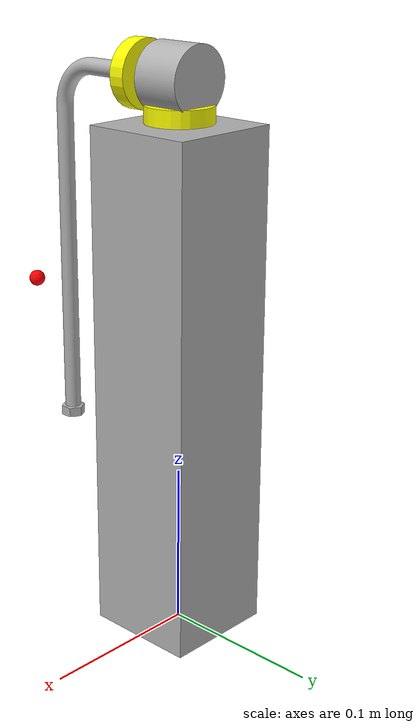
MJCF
<mujoco model="Pendel">
  <compiler angle="radian"/>
  <option gravity="0 0 -9.81" timestep="0.001"/>

  <default>
    <geom conaffinity="0" contype="0"/>
  </default>

  <asset>
    <mesh name="base_link" content_type="model/stl" file="meshes/base_link.stl" scale="0.001 0.001 0.001"/>
    <mesh name="Pendel_1" content_type="model/stl" file="meshes/Pendel_1.stl" scale="0.001 0.001 0.001"/>
    <mesh name="Encoder_1" content_type="model/stl" file="meshes/Encoder_1.stl" scale="0.001 0.001 0.001"/>
  </asset>

  <worldbody>
    <geom type="mesh" rgba="0.7 0.7 0.7 1" mesh="base_link"/>

    <body name="Encoder_1" pos="0 0 0.316">
      <inertial pos="0.0 0.0 0.0190114" quat="0.707107 0 0 0.707107" mass="0.102359" diaginertia="2e-05 1.8e-05 1.8e-05"/>
      <geom name="rotary_joint_vis" type="cylinder" size="0.02 0.005" pos="0 0 0" rgba="1 1 0 1"/>

      <joint name="rotaryGelenk" pos="0 0 0" axis="0 0 1" range="-6.28318 6.28318" damping="0.005" frictionloss="0.00001"/>

      <geom pos="0 0 -0.316" quat="1 0 0 0" type="mesh" rgba="0.7 0.7 0.7 1" mesh="Encoder_1"/>

      <body name="Pendel_1" pos="0 -0.0295 0.019002">
        <inertial pos="0 -0.09640 -0.1394" mass="0.038014" fullinertia="0.0005330 0.0004654 0.000068563 -0.000000000246 -0.000000001259 -0.0001223"/>

        <site name="schwerpunkt_marker" pos="0 -0.09640 -0.1394" size="0.005" rgba="1 0 0 1" type="sphere"/>
        <geom name="pendel_joint_vis" type="cylinder" size="0.02 0.005" pos="0 0 0" quat="0.70710678 0.70710678 0 0" rgba="1 1 0 1"/>
        <joint name="pendelGelenk" pos="0 0 0" axis="0 -1 0" damping="0.000067" frictionloss="0.0"/>

        <geom pos="0 0.0295 -0.335002" type="mesh" rgba="0.7 0.7 0.7 1" mesh="Pendel_1"/>
      </body>

    </body>
  </worldbody>

  <actuator>
    <position name="motor_rotary" joint="rotaryGelenk" kp="1000" ctrlrange="-6.28318 6.28318" forcerange="-0.3 0.3"/>
  </actuator>

</mujoco>
